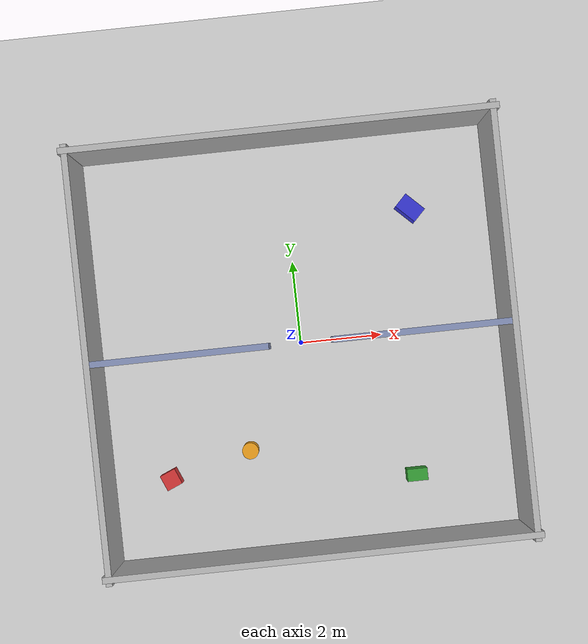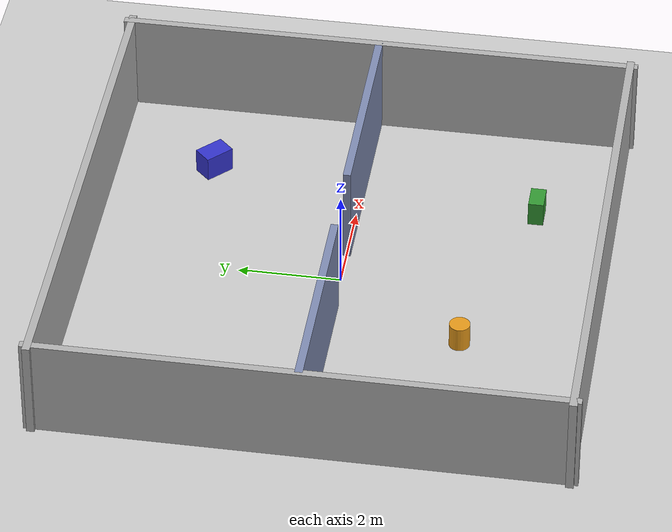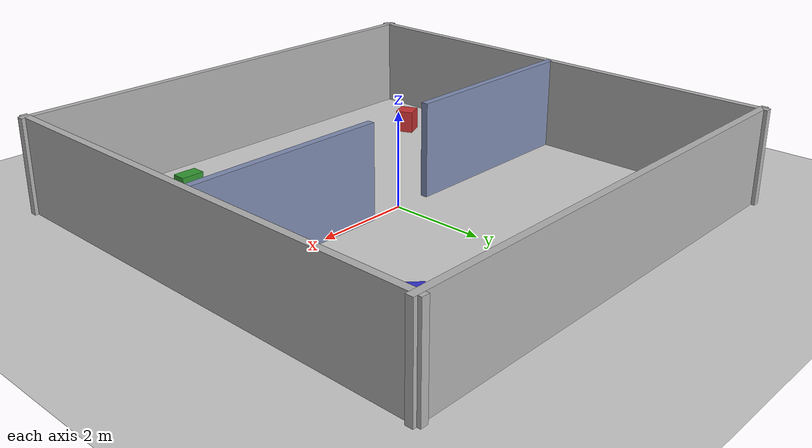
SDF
<?xml version="1.0" ?>
<sdf version="1.9">
  <world name="indoor_world">

    <!-- Physics and required system plugins for Gazebo Harmonic -->
    <physics name="1ms" type="ignored">
      <max_step_size>0.001</max_step_size>
      <real_time_factor>1.0</real_time_factor>
    </physics>
    <plugin filename="gz-sim-physics-system"
            name="gz::sim::systems::Physics"/>
    <plugin filename="gz-sim-sensors-system"
            name="gz::sim::systems::Sensors">
      <render_engine>ogre2</render_engine>
    </plugin>
    <plugin filename="gz-sim-scene-broadcaster-system"
            name="gz::sim::systems::SceneBroadcaster"/>
    <plugin filename="gz-sim-user-commands-system"
            name="gz::sim::systems::UserCommands"/>

    <!-- Sunlight -->
    <light name="sun" type="directional">
      <cast_shadows>true</cast_shadows>
      <pose>0 0 10 0 0 0</pose>
      <diffuse>0.8 0.8 0.8 1</diffuse>
      <specular>0.2 0.2 0.2 1</specular>
      <direction>-0.5 0.1 -0.9</direction>
    </light>

    <!-- Floor -->
    <model name="ground_plane">
      <static>true</static>
      <link name="link">
        <collision name="collision">
          <geometry><plane><normal>0 0 1</normal><size>20 20</size></plane></geometry>
        </collision>
        <visual name="visual">
          <geometry><plane><normal>0 0 1</normal><size>20 20</size></plane></geometry>
          <material>
            <ambient>0.8 0.8 0.8 1</ambient>
            <diffuse>0.8 0.8 0.8 1</diffuse>
          </material>
        </visual>
      </link>
    </model>

    <!-- OUTER WALLS — 10m × 10m enclosure, 2m tall, 0.15m thick -->
    <!-- Each wall is a static box model positioned at the boundary -->

    <model name="wall_south">
      <static>true</static>
      <pose>0 -5 1.0 0 0 0</pose>
      <link name="link">
        <collision name="col"><geometry><box><size>10.3 0.15 2.0</size></box></geometry></collision>
        <visual name="vis">
          <geometry><box><size>10.3 0.15 2.0</size></box></geometry>
          <material><ambient>0.7 0.7 0.7 1</ambient></material>
        </visual>
      </link>
    </model>

    <model name="wall_north">
      <static>true</static>
      <pose>0 5 1.0 0 0 0</pose>
      <link name="link">
        <collision name="col"><geometry><box><size>10.3 0.15 2.0</size></box></geometry></collision>
        <visual name="vis">
          <geometry><box><size>10.3 0.15 2.0</size></box></geometry>
          <material><ambient>0.7 0.7 0.7 1</ambient></material>
        </visual>
      </link>
    </model>

    <model name="wall_west">
      <static>true</static>
      <pose>-5 0 1.0 0 0 1.5708</pose>
      <link name="link">
        <collision name="col"><geometry><box><size>10.3 0.15 2.0</size></box></geometry></collision>
        <visual name="vis">
          <geometry><box><size>10.3 0.15 2.0</size></box></geometry>
          <material><ambient>0.7 0.7 0.7 1</ambient></material>
        </visual>
      </link>
    </model>

    <model name="wall_east">
      <static>true</static>
      <pose>5 0 1.0 0 0 1.5708</pose>
      <link name="link">
        <collision name="col"><geometry><box><size>10.3 0.15 2.0</size></box></geometry></collision>
        <visual name="vis">
          <geometry><box><size>10.3 0.15 2.0</size></box></geometry>
          <material><ambient>0.7 0.7 0.7 1</ambient></material>
        </visual>
      </link>
    </model>

    <!-- INNER WALL — divides room in two with a 1.5m doorway gap in the middle -->
    <model name="inner_wall_left">
      <static>true</static>
      <pose>-2.875 0 1.0 0 0 0</pose>
      <link name="link">
        <collision name="col"><geometry><box><size>4.25 0.15 2.0</size></box></geometry></collision>
        <visual name="vis">
          <geometry><box><size>4.25 0.15 2.0</size></box></geometry>
          <material><ambient>0.5 0.55 0.7 1</ambient></material>
        </visual>
      </link>
    </model>

    <model name="inner_wall_right">
      <static>true</static>
      <pose>2.875 0 1.0 0 0 0</pose>
      <link name="link">
        <collision name="col"><geometry><box><size>4.25 0.15 2.0</size></box></geometry></collision>
        <visual name="vis">
          <geometry><box><size>4.25 0.15 2.0</size></box></geometry>
          <material><ambient>0.5 0.55 0.7 1</ambient></material>
        </visual>
      </link>
    </model>

    <!-- OBSTACLES — red, green, blue boxes and orange cylinders -->
    <model name="box_red">
      <static>true</static>
      <pose>-3.5 -3 0.25 0 0 0.4</pose>
      <link name="link">
        <collision name="col"><geometry><box><size>0.4 0.4 0.5</size></box></geometry></collision>
        <visual name="vis">
          <geometry><box><size>0.4 0.4 0.5</size></box></geometry>
          <material><ambient>0.8 0.2 0.2 1</ambient></material>
        </visual>
      </link>
    </model>

    <model name="box_green">
      <static>true</static>
      <pose>2.5 -3.5 0.25 0 0 0</pose>
      <link name="link">
        <collision name="col"><geometry><box><size>0.5 0.3 0.5</size></box></geometry></collision>
        <visual name="vis">
          <geometry><box><size>0.5 0.3 0.5</size></box></geometry>
          <material><ambient>0.2 0.6 0.2 1</ambient></material>
        </visual>
      </link>
    </model>

    <model name="cylinder_orange">
      <static>true</static>
      <pose>-1.5 -2.5 0.25 0 0 0</pose>
      <link name="link">
        <collision name="col"><geometry><cylinder><radius>0.2</radius><length>0.5</length></cylinder></geometry></collision>
        <visual name="vis">
          <geometry><cylinder><radius>0.2</radius><length>0.5</length></cylinder></geometry>
          <material><ambient>0.9 0.6 0.1 1</ambient></material>
        </visual>
      </link>
    </model>

    <model name="box_blue">
      <static>true</static>
      <pose>3 3 0.25 0 0 0.8</pose>
      <link name="link">
        <collision name="col"><geometry><box><size>0.4 0.6 0.5</size></box></geometry></collision>
        <visual name="vis">
          <geometry><box><size>0.4 0.6 0.5</size></box></geometry>
          <material><ambient>0.2 0.2 0.8 1</ambient></material>
        </visual>
      </link>
    </model>

  </world>
</sdf>
